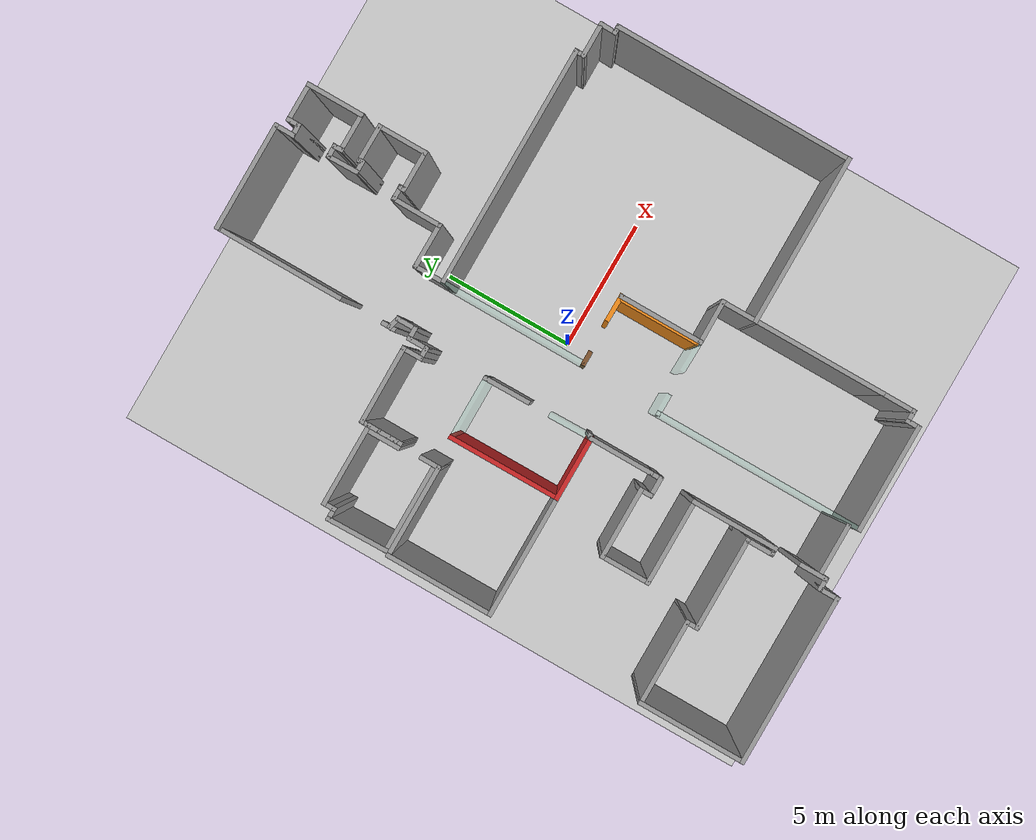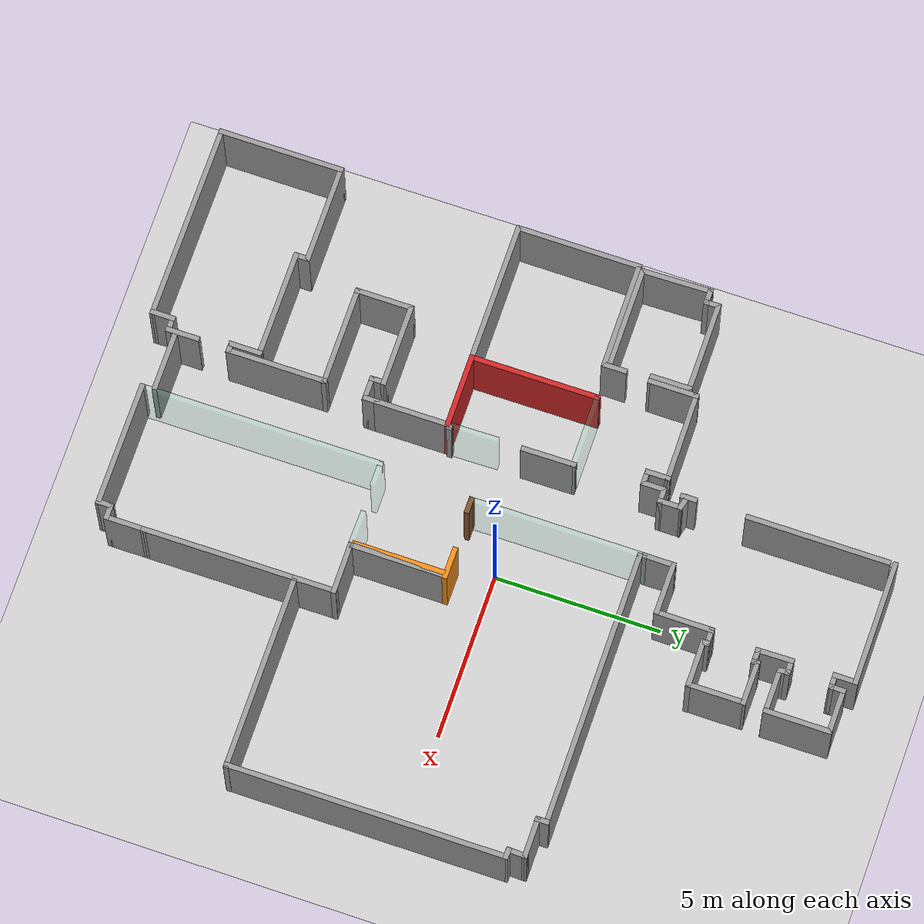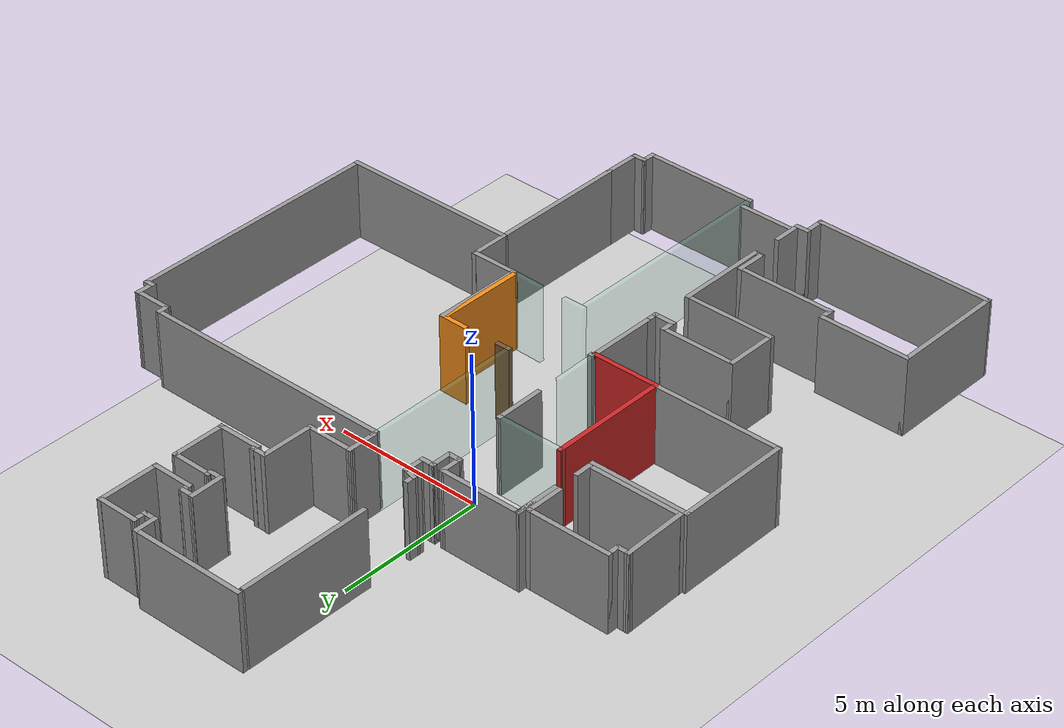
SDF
<sdf version="1.6">
 <world name="default">
  <model name="ground_plane">
   <static>1</static>
   <link name="link">
    <collision name="collision">
     <geometry><plane><normal>0 0 1</normal><size>100 100</size></plane></geometry>
     <surface><friction><ode><mu>100</mu><mu2>50</mu2></ode></friction></surface>
    </collision>
    <visual name="visual">
     <cast_shadows>0</cast_shadows>
     <geometry><plane><normal>0 0 1</normal><size>100 100</size></plane></geometry>
     <material>
      <script><uri>file://media/materials/scripts/gazebo.material</uri><name>Gazebo/Grey</name></script>
     </material>
    </visual>
   </link>
  </model>
  <model name="SS_office_try_3">
   <pose>0.153592 -0.122335 2.5 0 -0 0</pose>
   <link name="Wall_0">
    <collision name="Wall_0_Collision">
     <geometry><box><size>5.91251 0.15 2.5</size></box></geometry>
     <pose>0 0 1.25 0 -0 0</pose>
    </collision>
    <visual name="Wall_0_Visual">
     <pose>0 0 1.25 0 -0 0</pose>
     <geometry><box><size>5.91251 0.15 2.5</size></box></geometry>
     <material>
      <script><uri>file://media/materials/scripts/gazebo.material</uri><name>Gazebo/Grey</name></script>
      <ambient>1 1 1 1</ambient>
     </material>
     <meta><layer>0</layer></meta>
    </visual>
    <pose>-5.91425 -11.0474 0 0 -0 3.13893</pose>
   </link>
   <link name="Wall_1">
    <collision name="Wall_1_Collision">
     <geometry><box><size>3.75 0.15 2.5</size></box></geometry>
     <pose>0 0 1.25 0 -0 0</pose>
    </collision>
    <visual name="Wall_1_Visual">
     <pose>0 0 1.25 0 -0 0</pose>
     <geometry><box><size>3.75 0.15 2.5</size></box></geometry>
     <material>
      <script><uri>file://media/materials/scripts/gazebo.material</uri><name>Gazebo/Grey</name></script>
      <ambient>1 1 1 1</ambient>
     </material>
     <meta><layer>0</layer></meta>
    </visual>
    <pose>-8.79549 -9.23977 0 0 -0 1.5708</pose>
   </link>
   <link name="Wall_10">
    <collision name="Wall_10_Collision">
     <geometry><box><size>1.75 0.15 2.5</size></box></geometry>
     <pose>0 0 1.25 0 -0 0</pose>
    </collision>
    <visual name="Wall_10_Visual">
     <pose>0 0 1.25 0 -0 0</pose>
     <geometry><box><size>1.75 0.15 2.5</size></box></geometry>
     <material>
      <script><uri>file://media/materials/scripts/gazebo.material</uri><name>Gazebo/Grey</name></script>
      <ambient>1 1 1 1</ambient>
     </material>
     <meta><layer>0</layer></meta>
    </visual>
    <pose>-5.49549 -4.98977 0 0 -0 1.5708</pose>
   </link>
   <link name="Wall_100">
    <collision name="Wall_100_Collision">
     <geometry><box><size>0.379823 0.15 2.5</size></box></geometry>
     <pose>0 0 1.25 0 -0 0</pose>
    </collision>
    <visual name="Wall_100_Visual">
     <pose>0 0 1.25 0 -0 0</pose>
     <geometry><box><size>0.379823 0.15 2.5</size></box></geometry>
     <material>
      <script><uri>file://media/materials/scripts/gazebo.material</uri><name>Gazebo/Grey</name></script>
      <ambient>1 1 1 1</ambient>
     </material>
     <meta><layer>0</layer></meta>
    </visual>
    <pose>1.28072 9.07016 0 0 -0 1.63617</pose>
   </link>
   <link name="Wall_101">
    <collision name="Wall_101_Collision">
     <geometry><box><size>0.5 0.15 2.5</size></box></geometry>
     <pose>0 0 1.25 0 -0 0</pose>
    </collision>
    <visual name="Wall_101_Visual">
     <pose>0 0 1.25 0 -0 0</pose>
     <geometry><box><size>0.5 0.15 2.5</size></box></geometry>
     <material>
      <script><uri>file://media/materials/scripts/gazebo.material</uri><name>Gazebo/Grey</name></script>
      <ambient>1 1 1 1</ambient>
     </material>
     <meta><layer>0</layer></meta>
    </visual>
    <pose>1.10572 9.18501 0 0 -0 3.14159</pose>
   </link>
   <link name="Wall_102">
    <collision name="Wall_102_Collision">
     <geometry><box><size>1.12973 0.15 2.5</size></box></geometry>
     <pose>0 0 1.25 0 -0 0</pose>
    </collision>
    <visual name="Wall_102_Visual">
     <pose>0 0 1.25 0 -0 0</pose>
     <geometry><box><size>1.12973 0.15 2.5</size></box></geometry>
     <material>
      <script><uri>file://media/materials/scripts/gazebo.material</uri><name>Gazebo/Grey</name></script>
      <ambient>1 1 1 1</ambient>
     </material>
     <meta><layer>0</layer></meta>
    </visual>
    <pose>0.930715 8.69516 0 0 0 -1.55545</pose>
   </link>
   <link name="Wall_103">
    <collision name="Wall_103_Collision">
     <geometry><box><size>0.5 0.15 2.5</size></box></geometry>
     <pose>0 0 1.25 0 -0 0</pose>
    </collision>
    <visual name="Wall_103_Visual">
     <pose>0 0 1.25 0 -0 0</pose>
     <geometry><box><size>0.5 0.15 2.5</size></box></geometry>
     <material>
      <script><uri>file://media/materials/scripts/gazebo.material</uri><name>Gazebo/Grey</name></script>
      <ambient>1 1 1 1</ambient>
     </material>
     <meta><layer>0</layer></meta>
    </visual>
    <pose>1.11323 8.20531 0 0 -0 0</pose>
   </link>
   <link name="Wall_104">
    <collision name="Wall_104_Collision">
     <geometry><box><size>0.25 0.15 2.5</size></box></geometry>
     <pose>0 0 1.25 0 -0 0</pose>
    </collision>
    <visual name="Wall_104_Visual">
     <pose>0 0 1.25 0 -0 0</pose>
     <geometry><box><size>0.25 0.15 2.5</size></box></geometry>
     <material>
      <script><uri>file://media/materials/scripts/gazebo.material</uri><name>Gazebo/Grey</name></script>
      <ambient>1 1 1 1</ambient>
     </material>
     <meta><layer>0</layer></meta>
    </visual>
    <pose>1.28823 8.25531 0 0 -0 1.5708</pose>
   </link>
   <link name="Wall_105">
    <collision name="Wall_105_Collision">
     <geometry><box><size>1.3554 0.15 2.5</size></box></geometry>
     <pose>0 0 1.25 0 -0 0</pose>
    </collision>
    <visual name="Wall_105_Visual">
     <pose>0 0 1.25 0 -0 0</pose>
     <geometry><box><size>1.3554 0.15 2.5</size></box></geometry>
     <material>
      <script><uri>file://media/materials/scripts/gazebo.material</uri><name>Gazebo/Grey</name></script>
      <ambient>1 1 1 1</ambient>
     </material>
     <meta><layer>0</layer></meta>
    </visual>
    <pose>1.89089 8.29779 0 0 0 -0.012475</pose>
   </link>
   <link name="Wall_106">
    <collision name="Wall_106_Collision">
     <geometry><box><size>1.75 0.15 2.5</size></box></geometry>
     <pose>0 0 1.25 0 -0 0</pose>
    </collision>
    <visual name="Wall_106_Visual">
     <pose>0 0 1.25 0 -0 0</pose>
     <geometry><box><size>1.75 0.15 2.5</size></box></geometry>
     <material>
      <script><uri>file://media/materials/scripts/gazebo.material</uri><name>Gazebo/Grey</name></script>
      <ambient>1 1 1 1</ambient>
     </material>
     <meta><layer>0</layer></meta>
    </visual>
    <pose>2.49354 7.49027 0 0 0 -1.5708</pose>
   </link>
   <link name="Wall_107">
    <collision name="Wall_107_Collision">
     <geometry><box><size>1.45874 0.15 2.5</size></box></geometry>
     <pose>0 0 1.25 0 -0 0</pose>
    </collision>
    <visual name="Wall_107_Visual">
     <pose>0 0 1.25 0 -0 0</pose>
     <geometry><box><size>1.45874 0.15 2.5</size></box></geometry>
     <material>
      <script><uri>file://media/materials/scripts/gazebo.material</uri><name>Gazebo/Grey</name></script>
      <ambient>1 1 1 1</ambient>
     </material>
     <meta><layer>0</layer></meta>
    </visual>
    <pose>1.84486 6.69027 0 0 -0 3.14159</pose>
   </link>
   <link name="Wall_108">
    <collision name="Wall_108_Collision">
     <geometry><box><size>0.266919 0.15 2.5</size></box></geometry>
     <pose>0 0 1.25 0 -0 0</pose>
    </collision>
    <visual name="Wall_108_Visual">
     <pose>0 0 1.25 0 -0 0</pose>
     <geometry><box><size>0.266919 0.15 2.5</size></box></geometry>
     <material>
      <script><uri>file://media/materials/scripts/gazebo.material</uri><name>Gazebo/Grey</name></script>
      <ambient>1 1 1 1</ambient>
     </material>
     <meta><layer>0</layer></meta>
    </visual>
    <pose>1.19801 6.75625 0 0 -0 1.5708</pose>
   </link>
   <link name="Wall_109">
    <collision name="Wall_109_Collision">
     <geometry><box><size>0.552631 0.15 2.5</size></box></geometry>
     <pose>0 0 1.25 0 -0 0</pose>
    </collision>
    <visual name="Wall_109_Visual">
     <pose>0 0 1.25 0 -0 0</pose>
     <geometry><box><size>0.552631 0.15 2.5</size></box></geometry>
     <material>
      <script><uri>file://media/materials/scripts/gazebo.material</uri><name>Gazebo/Grey</name></script>
      <ambient>1 1 1 1</ambient>
     </material>
     <meta><layer>0</layer></meta>
    </visual>
    <pose>1.00421 6.80719 0 0 -0 3.14159</pose>
   </link>
   <link name="Wall_11">
    <collision name="Wall_11_Collision">
     <geometry><box><size>2.5 0.15 2.5</size></box></geometry>
     <pose>0 0 1.25 0 -0 0</pose>
    </collision>
    <visual name="Wall_11_Visual">
     <pose>0 0 1.25 0 -0 0</pose>
     <geometry><box><size>2.5 0.15 2.5</size></box></geometry>
     <material>
      <script><uri>file://media/materials/scripts/gazebo.material</uri><name>Gazebo/Grey</name></script>
      <ambient>1 1 1 1</ambient>
     </material>
     <meta><layer>0</layer></meta>
    </visual>
    <pose>-4.32049 -4.18977 0 0 -0 0</pose>
   </link>
   <link name="Wall_110">
    <collision name="Wall_110_Collision">
     <geometry><box><size>1.75942 0.15 2.5</size></box></geometry>
     <pose>0 0 1.25 0 -0 0</pose>
    </collision>
    <visual name="Wall_110_Visual">
     <pose>0 0 1.25 0 -0 0</pose>
     <geometry><box><size>1.75942 0.15 2.5</size></box></geometry>
     <material>
      <script><uri>file://media/materials/scripts/gazebo.material</uri><name>Gazebo/Grey</name></script>
      <ambient>1 1 1 1</ambient>
     </material>
     <meta><layer>0</layer></meta>
    </visual>
    <pose>0.791618 6.01001 0 0 0 -1.57547</pose>
   </link>
   <link name="Wall_111">
    <collision name="Wall_111_Collision">
     <geometry><box><size>1.59211 0.15 2.5</size></box></geometry>
     <pose>0 0 1.25 0 -0 0</pose>
    </collision>
    <visual name="Wall_111_Visual">
     <pose>0 0 1.25 0 -0 0</pose>
     <geometry><box><size>1.59211 0.15 2.5</size></box></geometry>
     <material>
      <script><uri>file://media/materials/scripts/gazebo.material</uri><name>Gazebo/Grey</name></script>
      <ambient>1 1 1 1</ambient>
     </material>
     <meta><layer>0</layer></meta>
    </visual>
    <pose>0.059287 5.20155 0 0 -0 3.13638</pose>
   </link>
   <link name="Wall_113">
    <collision name="Wall_113_Collision">
     <geometry><box><size>1 0.15 2.5</size></box></geometry>
     <pose>0 0 1.25 0 -0 0</pose>
    </collision>
    <visual name="Wall_113_Visual">
     <pose>0 0 1.25 0 -0 0</pose>
     <geometry><box><size>1 0.15 2.5</size></box></geometry>
     <material>
      <script><uri>file://media/materials/scripts/gazebo.material</uri><name>Gazebo/Grey</name></script>
      <ambient>1 1 1 1</ambient>
     </material>
     <meta><layer>0</layer></meta>
    </visual>
    <pose>-0.661766 4.78031 0 0 0 -1.5708</pose>
   </link>
   <link name="Wall_115">
    <collision name="Wall_115_Collision">
     <geometry><box><size>5.25 0.15 2.5</size></box></geometry>
     <pose>0 0 1.25 0 -0 0</pose>
    </collision>
    <visual name="Wall_115_Visual">
     <pose>0 0 1.25 0 -0 0</pose>
     <geometry><box><size>5.25 0.15 2.5</size></box></geometry>
     <material>
      <script><uri>file://media/materials/scripts/gazebo.material</uri><name>Gazebo/Grey</name></script>
      <ambient>0.435 0.796 0.675 1</ambient>
      <diffuse>0.7 0.7 0.7 1</diffuse>
      <specular>0.01 0.01 0.01 1</specular>
      <emissive>0 0 0 1</emissive>
     </material>
     <meta><layer>0</layer></meta>
     <transparency>0.8</transparency>
    </visual>
    <pose>-0.661766 1.80531 0 0 0 -1.5708</pose>
   </link>
   <link name="Wall_116">
    <collision name="Wall_116_Collision">
     <geometry><box><size>0.5 0.15 2.5</size></box></geometry>
     <pose>0 0 1.25 0 -0 0</pose>
    </collision>
    <visual name="Wall_116_Visual">
     <pose>0 0 1.25 0 -0 0</pose>
     <geometry><box><size>0.5 0.15 2.5</size></box></geometry>
     <material>
      <script><uri>file://media/materials/scripts/gazebo.material</uri><name>Gazebo/Brown</name></script>
      <ambient>1 1 1 1</ambient>
     </material>
     <meta><layer>0</layer></meta>
    </visual>
    <pose>-0.486766 -0.744691 0 0 -0 0</pose>
   </link>
   <link name="Wall_118">
    <collision name="Wall_118_Collision">
     <geometry><box><size>0.961189 0.15 2.5</size></box></geometry>
     <pose>0 0 1.25 0 -0 0</pose>
    </collision>
    <visual name="Wall_118_Visual">
     <pose>0 0 1.25 0 -0 0</pose>
     <geometry><box><size>0.961189 0.15 2.5</size></box></geometry>
     <material>
      <script><uri>file://media/materials/scripts/gazebo.material</uri><name>Gazebo/Orange</name></script>
      <ambient>1 1 1 1</ambient>
     </material>
     <meta><layer>0</layer></meta>
    </visual>
    <pose>1.28357 -0.707118 0 0 0 -0.008354</pose>
   </link>
   <link name="Wall_119">
    <collision name="Wall_119_Collision">
     <geometry><box><size>2.92618 0.15 2.5</size></box></geometry>
     <pose>0 0 1.25 0 -0 0</pose>
    </collision>
    <visual name="Wall_119_Visual">
     <pose>0 0 1.25 0 -0 0</pose>
     <geometry><box><size>2.92618 0.15 2.5</size></box></geometry>
     <material>
      <script><uri>file://media/materials/scripts/gazebo.material</uri><name>Gazebo/Grey</name></script>
      <ambient>1 1 1 1</ambient>
     </material>
     <meta><layer>0</layer></meta>
    </visual>
    <pose>1.68237 -2.11215 0 0 0 -1.5708</pose>
   </link>
   <link name="Wall_12">
    <collision name="Wall_12_Collision">
     <geometry><box><size>0.5 0.15 2.5</size></box></geometry>
     <pose>0 0 1.25 0 -0 0</pose>
    </collision>
    <visual name="Wall_12_Visual">
     <pose>0 0 1.25 0 -0 0</pose>
     <geometry><box><size>0.5 0.15 2.5</size></box></geometry>
     <material>
      <script><uri>file://media/materials/scripts/gazebo.material</uri><name>Gazebo/Grey</name></script>
      <ambient>1 1 1 1</ambient>
     </material>
     <meta><layer>0</layer></meta>
    </visual>
    <pose>-3.14549 -4.36477 0 0 0 -1.5708</pose>
   </link>
   <link name="Wall_120">
    <collision name="Wall_120_Collision">
     <geometry><box><size>1.55423 0.15 2.5</size></box></geometry>
     <pose>0 0 1.25 0 -0 0</pose>
    </collision>
    <visual name="Wall_120_Visual">
     <pose>0 0 1.25 0 -0 0</pose>
     <geometry><box><size>1.55423 0.15 2.5</size></box></geometry>
     <material>
      <script><uri>file://media/materials/scripts/gazebo.material</uri><name>Gazebo/Grey</name></script>
      <ambient>1 1 1 1</ambient>
     </material>
     <meta><layer>0</layer></meta>
    </visual>
    <pose>2.39125 -3.50363 0 0 -0 0.004826</pose>
   </link>
   <link name="Wall_121">
    <collision name="Wall_121_Collision">
     <geometry><box><size>1.31028 0.15 2.5</size></box></geometry>
     <pose>0 0 1.25 0 -0 0</pose>
    </collision>
    <visual name="Wall_121_Visual">
     <pose>0 0 1.25 0 -0 0</pose>
     <geometry><box><size>1.31028 0.15 2.5</size></box></geometry>
     <material>
      <script><uri>file://media/materials/scripts/gazebo.material</uri><name>Gazebo/Grey</name></script>
      <ambient>1 1 1 1</ambient>
     </material>
     <meta><layer>0</layer></meta>
    </visual>
    <pose>3.08997 -4.0736 0 0 0 -1.56496</pose>
   </link>
   <link name="Wall_122">
    <collision name="Wall_122_Collision">
     <geometry><box><size>5.85233 0.15 2.5</size></box></geometry>
     <pose>0 0 1.25 0 -0 0</pose>
    </collision>
    <visual name="Wall_122_Visual">
     <pose>0 0 1.25 0 -0 0</pose>
     <geometry><box><size>5.85233 0.15 2.5</size></box></geometry>
     <material>
      <script><uri>file://media/materials/scripts/gazebo.material</uri><name>Gazebo/Grey</name></script>
      <ambient>1 1 1 1</ambient>
     </material>
     <meta><layer>0</layer></meta>
    </visual>
    <pose>5.94452 -4.65373 0 0 -0 0</pose>
   </link>
   <link name="Wall_123">
    <collision name="Wall_123_Collision">
     <geometry><box><size>8.28775 0.15 2.5</size></box></geometry>
     <pose>0 0 1.25 0 -0 0</pose>
    </collision>
    <visual name="Wall_123_Visual">
     <pose>0 0 1.25 0 -0 0</pose>
     <geometry><box><size>8.28775 0.15 2.5</size></box></geometry>
     <material>
      <script><uri>file://media/materials/scripts/gazebo.material</uri><name>Gazebo/Grey</name></script>
      <ambient>1 1 1 1</ambient>
     </material>
     <meta><layer>0</layer></meta>
    </visual>
    <pose>8.78622 -0.584854 0 0 -0 1.57126</pose>
   </link>
   <link name="Wall_124">
    <collision name="Wall_124_Collision">
     <geometry><box><size>0.352219 0.15 2.5</size></box></geometry>
     <pose>0 0 1.25 0 -0 0</pose>
    </collision>
    <visual name="Wall_124_Visual">
     <pose>0 0 1.25 0 -0 0</pose>
     <geometry><box><size>0.352219 0.15 2.5</size></box></geometry>
     <material>
      <script><uri>file://media/materials/scripts/gazebo.material</uri><name>Gazebo/Grey</name></script>
      <ambient>1 1 1 1</ambient>
     </material>
     <meta><layer>0</layer></meta>
    </visual>
    <pose>8.68323 3.48971 0 0 -0 3.12285</pose>
   </link>
   <link name="Wall_125">
    <collision name="Wall_125_Collision">
     <geometry><box><size>0.636677 0.15 2.5</size></box></geometry>
     <pose>0 0 1.25 0 -0 0</pose>
    </collision>
    <visual name="Wall_125_Visual">
     <pose>0 0 1.25 0 -0 0</pose>
     <geometry><box><size>0.636677 0.15 2.5</size></box></geometry>
     <material>
      <script><uri>file://media/materials/scripts/gazebo.material</uri><name>Gazebo/Grey</name></script>
      <ambient>1 1 1 1</ambient>
     </material>
     <meta><layer>0</layer></meta>
    </visual>
    <pose>8.58585 3.73103 0 0 -0 1.53995</pose>
   </link>
   <link name="Wall_126">
    <collision name="Wall_126_Collision">
     <geometry><box><size>1.25 0.15 2.5</size></box></geometry>
     <pose>0 0 1.25 0 -0 0</pose>
    </collision>
    <visual name="Wall_126_Visual">
     <pose>0 0 1.25 0 -0 0</pose>
     <geometry><box><size>1.25 0.15 2.5</size></box></geometry>
     <material>
      <script><uri>file://media/materials/scripts/gazebo.material</uri><name>Gazebo/Grey</name></script>
      <ambient>1 1 1 1</ambient>
     </material>
     <meta><layer>0</layer></meta>
    </visual>
    <pose>8.04336 3.97426 0 0 -0 3.14159</pose>
   </link>
   <link name="Wall_127">
    <collision name="Wall_127_Collision">
     <geometry><box><size>0.411283 0.15 2.5</size></box></geometry>
     <pose>0 0 1.25 0 -0 0</pose>
    </collision>
    <visual name="Wall_127_Visual">
     <pose>0 0 1.25 0 -0 0</pose>
     <geometry><box><size>0.411283 0.15 2.5</size></box></geometry>
     <material>
      <script><uri>file://media/materials/scripts/gazebo.material</uri><name>Gazebo/Grey</name></script>
      <ambient>1 1 1 1</ambient>
     </material>
     <meta><layer>0</layer></meta>
    </visual>
    <pose>7.49234 4.1011 0 0 -0 1.57861</pose>
   </link>
   <link name="Wall_128">
    <collision name="Wall_128_Collision">
     <geometry><box><size>8.25 0.15 2.5</size></box></geometry>
     <pose>0 0 1.25 0 -0 0</pose>
    </collision>
    <visual name="Wall_128_Visual">
     <pose>0 0 1.25 0 -0 0</pose>
     <geometry><box><size>8.25 0.15 2.5</size></box></geometry>
     <material>
      <script><uri>file://media/materials/scripts/gazebo.material</uri><name>Gazebo/Grey</name></script>
      <ambient>1 1 1 1</ambient>
     </material>
     <meta><layer>0</layer></meta>
    </visual>
    <pose>3.43753 4.23174 0 0 -0 3.14159</pose>
   </link>
   <link name="Wall_13">
    <collision name="Wall_13_Collision">
     <geometry><box><size>0.75 0.15 2.5</size></box></geometry>
     <pose>0 0 1.25 0 -0 0</pose>
    </collision>
    <visual name="Wall_13_Visual">
     <pose>0 0 1.25 0 -0 0</pose>
     <geometry><box><size>0.75 0.15 2.5</size></box></geometry>
     <material>
      <script><uri>file://media/materials/scripts/gazebo.material</uri><name>Gazebo/Grey</name></script>
      <ambient>1 1 1 1</ambient>
     </material>
     <meta><layer>0</layer></meta>
    </visual>
    <pose>-2.84549 -4.53977 0 0 -0 0</pose>
   </link>
   <link name="Wall_134">
    <collision name="Wall_134_Collision">
     <geometry><box><size>1.13806 0.15 2.5</size></box></geometry>
     <pose>0 0 1.25 0 -0 0</pose>
    </collision>
    <visual name="Wall_134_Visual">
     <pose>0 0 1.25 0 -0 0</pose>
     <geometry><box><size>1.13806 0.15 2.5</size></box></geometry>
     <material>
      <script><uri>file://media/materials/scripts/gazebo.material</uri><name>Gazebo/Grey</name></script>
      <ambient>0.435 0.796 0.675 1</ambient>
      <diffuse>0.7 0.7 0.7 1</diffuse>
      <specular>0.01 0.01 0.01 1</specular>
      <emissive>0 0 0 1</emissive>
     </material>
     <meta><layer>0</layer></meta>
     <transparency>0.8</transparency>
    </visual>
    <pose>1.19527 -3.49491 0 0 0 -0.024517</pose>
   </link>
   <link name="Wall_136">
    <collision name="Wall_136_Collision">
     <geometry><box><size>2.75 0.15 2.5</size></box></geometry>
     <pose>0 0 1.25 0 -0 0</pose>
    </collision>
    <visual name="Wall_136_Visual">
     <pose>0 0 1.25 0 -0 0</pose>
     <geometry><box><size>2.75 0.15 2.5</size></box></geometry>
     <material>
      <script><uri>file://media/materials/scripts/gazebo.material</uri><name>Gazebo/Orange</name></script>
      <ambient>1 1 1 1</ambient>
     </material>
     <meta><layer>0</layer></meta>
    </visual>
    <pose>1.60652 -2.11221 0 0 0 -1.5708</pose>
   </link>
   <link name="Wall_138">
    <collision name="Wall_138_Collision">
     <geometry><box><size>0.75 0.15 2.5</size></box></geometry>
     <pose>0 0 1.25 0 -0 0</pose>
    </collision>
    <visual name="Wall_138_Visual">
     <pose>0 0 1.25 0 -0 0</pose>
     <geometry><box><size>0.75 0.15 2.5</size></box></geometry>
     <material>
      <script><uri>file://media/materials/scripts/gazebo.material</uri><name>Gazebo/Grey</name></script>
      <ambient>0.435 0.796 0.675 1</ambient>
      <diffuse>0.7 0.7 0.7 1</diffuse>
      <specular>0.01 0.01 0.01 1</specular>
      <emissive>0 0 0 1</emissive>
     </material>
     <meta><layer>0</layer></meta>
     <transparency>0.8</transparency>
    </visual>
    <pose>-0.548157 -3.49201 0 0 -0 3.14159</pose>
   </link>
   <link name="Wall_139">
    <collision name="Wall_139_Collision">
     <geometry><box><size>7.25 0.15 2.5</size></box></geometry>
     <pose>0 0 1.25 0 -0 0</pose>
    </collision>
    <visual name="Wall_139_Visual">
     <pose>0 0 1.25 0 -0 0</pose>
     <geometry><box><size>7.25 0.15 2.5</size></box></geometry>
     <material>
      <script><uri>file://media/materials/scripts/gazebo.material</uri><name>Gazebo/Grey</name></script>
      <ambient>0.435 0.796 0.675 1</ambient>
      <diffuse>0.7 0.7 0.7 1</diffuse>
      <specular>0.01 0.01 0.01 1</specular>
      <emissive>0 0 0 1</emissive>
     </material>
     <meta><layer>0</layer></meta>
     <transparency>0.8</transparency>
    </visual>
    <pose>-0.848157 -7.04201 0 0 0 -1.5708</pose>
   </link>
   <link name="Wall_141">
    <collision name="Wall_141_Collision">
     <geometry><box><size>3.75 0.15 2.5</size></box></geometry>
     <pose>0 0 1.25 0 -0 0</pose>
    </collision>
    <visual name="Wall_141_Visual">
     <pose>0 0 1.25 0 -0 0</pose>
     <geometry><box><size>3.75 0.15 2.5</size></box></geometry>
     <material>
      <script><uri>file://media/materials/scripts/gazebo.material</uri><name>Gazebo/Grey</name></script>
      <ambient>1 1 1 1</ambient>
     </material>
     <meta><layer>0</layer></meta>
    </visual>
    <pose>0.951844 -10.592 0 0 -0 0</pose>
   </link>
   <link name="Wall_142">
    <collision name="Wall_142_Collision">
     <geometry><box><size>0.520329 0.15 2.5</size></box></geometry>
     <pose>0 0 1.25 0 -0 0</pose>
    </collision>
    <visual name="Wall_142_Visual">
     <pose>0 0 1.25 0 -0 0</pose>
     <geometry><box><size>0.520329 0.15 2.5</size></box></geometry>
     <material>
      <script><uri>file://media/materials/scripts/gazebo.material</uri><name>Gazebo/Grey</name></script>
      <ambient>1 1 1 1</ambient>
     </material>
     <meta><layer>0</layer></meta>
    </visual>
    <pose>2.75354 -10.4068 0 0 -0 1.56165</pose>
   </link>
   <link name="Wall_145">
    <collision name="Wall_145_Collision">
     <geometry><box><size>0.5 0.15 2.5</size></box></geometry>
     <pose>0 0 1.25 0 -0 0</pose>
    </collision>
    <visual name="Wall_145_Visual">
     <pose>0 0 1.25 0 -0 0</pose>
     <geometry><box><size>0.5 0.15 2.5</size></box></geometry>
     <material>
      <script><uri>file://media/materials/scripts/gazebo.material</uri><name>Gazebo/Grey</name></script>
      <ambient>1 1 1 1</ambient>
     </material>
     <meta><layer>0</layer></meta>
    </visual>
    <pose>2.93023 -10.2217 0 0 -0 0</pose>
   </link>
   <link name="Wall_146">
    <collision name="Wall_146_Collision">
     <geometry><box><size>1.25 0.15 2.5</size></box></geometry>
     <pose>0 0 1.25 0 -0 0</pose>
    </collision>
    <visual name="Wall_146_Visual">
     <pose>0 0 1.25 0 -0 0</pose>
     <geometry><box><size>1.25 0.15 2.5</size></box></geometry>
     <material>
      <script><uri>file://media/materials/scripts/gazebo.material</uri><name>Gazebo/Grey</name></script>
      <ambient>1 1 1 1</ambient>
     </material>
     <meta><layer>0</layer></meta>
    </visual>
    <pose>3.10523 -9.67168 0 0 -0 1.5708</pose>
   </link>
   <link name="Wall_147">
    <collision name="Wall_147_Collision">
     <geometry><box><size>4.61797 0.15 2.5</size></box></geometry>
     <pose>0 0 1.25 0 -0 0</pose>
    </collision>
    <visual name="Wall_147_Visual">
     <pose>0 0 1.25 0 -0 0</pose>
     <geometry><box><size>4.61797 0.15 2.5</size></box></geometry>
     <material>
      <script><uri>file://media/materials/scripts/gazebo.material</uri><name>Gazebo/Grey</name></script>
      <ambient>1 1 1 1</ambient>
     </material>
     <meta><layer>0</layer></meta>
    </visual>
    <pose>3.0993 -6.88771 0 0 -0 1.57345</pose>
   </link>
   <link name="Wall_149">
    <collision name="Wall_149_Collision">
     <geometry><box><size>1.75 0.15 2.5</size></box></geometry>
     <pose>0 0 1.25 0 -0 0</pose>
    </collision>
    <visual name="Wall_149_Visual">
     <pose>0 0 1.25 0 -0 0</pose>
     <geometry><box><size>1.75 0.15 2.5</size></box></geometry>
     <material>
      <script><uri>file://media/materials/scripts/gazebo.material</uri><name>Gazebo/Grey</name></script>
      <ambient>1 1 1 1</ambient>
     </material>
     <meta><layer>0</layer></meta>
    </visual>
    <pose>-1.74079 -10.2333 0 0 -0 3.14159</pose>
   </link>
   <link name="Wall_151">
    <collision name="Wall_151_Collision">
     <geometry><box><size>1 0.15 2.5</size></box></geometry>
     <pose>0 0 1.25 0 -0 0</pose>
    </collision>
    <visual name="Wall_151_Visual">
     <pose>0 0 1.25 0 -0 0</pose>
     <geometry><box><size>1 0.15 2.5</size></box></geometry>
     <material>
      <script><uri>file://media/materials/scripts/gazebo.material</uri><name>Gazebo/Grey</name></script>
      <ambient>1 1 1 1</ambient>
     </material>
     <meta><layer>0</layer></meta>
    </visual>
    <pose>-2.68301 -10.0301 0 0 0 -1.5708</pose>
   </link>
   <link name="Wall_152">
    <collision name="Wall_152_Collision">
     <geometry><box><size>0.5 0.15 2.5</size></box></geometry>
     <pose>0 0 1.25 0 -0 0</pose>
    </collision>
    <visual name="Wall_152_Visual">
     <pose>0 0 1.25 0 -0 0</pose>
     <geometry><box><size>0.5 0.15 2.5</size></box></geometry>
     <material>
      <script><uri>file://media/materials/scripts/gazebo.material</uri><name>Gazebo/Grey</name></script>
      <ambient>1 1 1 1</ambient>
     </material>
     <meta><layer>0</layer></meta>
    </visual>
    <pose>-2.85801 -10.4551 0 0 -0 3.14159</pose>
   </link>
   <link name="Wall_153">
    <collision name="Wall_153_Collision">
     <geometry><box><size>0.75 0.15 2.5</size></box></geometry>
     <pose>0 0 1.25 0 -0 0</pose>
    </collision>
    <visual name="Wall_153_Visual">
     <pose>0 0 1.25 0 -0 0</pose>
     <geometry><box><size>0.75 0.15 2.5</size></box></geometry>
     <material>
      <script><uri>file://media/materials/scripts/gazebo.material</uri><name>Gazebo/Grey</name></script>
      <ambient>1 1 1 1</ambient>
     </material>
     <meta><layer>0</layer></meta>
    </visual>
    <pose>-3.03301 -10.7551 0 0 0 -1.5708</pose>
   </link>
   <link name="Wall_155">
    <collision name="Wall_155_Collision">
     <geometry><box><size>1.62091 0.15 2.5</size></box></geometry>
     <pose>0 0 1.25 0 -0 0</pose>
    </collision>
    <visual name="Wall_155_Visual">
     <pose>0 0 1.25 0 -0 0</pose>
     <geometry><box><size>1.62091 0.15 2.5</size></box></geometry>
     <material>
      <script><uri>file://media/materials/scripts/gazebo.material</uri><name>Gazebo/Grey</name></script>
      <ambient>1 1 1 1</ambient>
     </material>
     <meta><layer>0</layer></meta>
    </visual>
    <pose>-2.55275 0.898318 0 0 -0 1.57861</pose>
   </link>
   <link name="Wall_2">
    <collision name="Wall_2_Collision">
     <geometry><box><size>3 0.15 2.5</size></box></geometry>
     <pose>0 0 1.25 0 -0 0</pose>
    </collision>
    <visual name="Wall_2_Visual">
     <pose>0 0 1.25 0 -0 0</pose>
     <geometry><box><size>3 0.15 2.5</size></box></geometry>
     <material>
      <script><uri>file://media/materials/scripts/gazebo.material</uri><name>Gazebo/Grey</name></script>
      <ambient>1 1 1 1</ambient>
     </material>
     <meta><layer>0</layer></meta>
    </visual>
    <pose>-7.37049 -7.43977 0 0 -0 0</pose>
   </link>
   <link name="Wall_28">
    <collision name="Wall_28_Collision">
     <geometry><box><size>0.15 0.15 2.5</size></box></geometry>
     <pose>0 0 1.25 0 -0 0</pose>
    </collision>
    <visual name="Wall_28_Visual">
     <pose>0 0 1.25 0 -0 0</pose>
     <geometry><box><size>0.15 0.15 2.5</size></box></geometry>
     <material>
      <script><uri>file://media/materials/scripts/gazebo.material</uri><name>Gazebo/Grey</name></script>
      <ambient>1 1 1 1</ambient>
     </material>
     <meta><layer>0</layer></meta>
    </visual>
    <pose>-2.48781 -2.00969 0 0 -0 0</pose>
   </link>
   <link name="Wall_3">
    <collision name="Wall_3_Collision">
     <geometry><box><size>0.5 0.15 2.5</size></box></geometry>
     <pose>0 0 1.25 0 -0 0</pose>
    </collision>
    <visual name="Wall_3_Visual">
     <pose>0 0 1.25 0 -0 0</pose>
     <geometry><box><size>0.5 0.15 2.5</size></box></geometry>
     <material>
      <script><uri>file://media/materials/scripts/gazebo.material</uri><name>Gazebo/Grey</name></script>
      <ambient>1 1 1 1</ambient>
     </material>
     <meta><layer>0</layer></meta>
    </visual>
    <pose>-5.94549 -7.61477 0 0 0 -1.5708</pose>
   </link>
   <link name="Wall_39">
    <collision name="Wall_39_Collision">
     <geometry><box><size>0.5 0.15 2.5</size></box></geometry>
     <pose>0 0 1.25 0 -0 0</pose>
    </collision>
    <visual name="Wall_39_Visual">
     <pose>0 0 1.25 0 -0 0</pose>
     <geometry><box><size>0.5 0.15 2.5</size></box></geometry>
     <material>
      <script><uri>file://media/materials/scripts/gazebo.material</uri><name>Gazebo/Grey</name></script>
      <ambient>1 1 1 1</ambient>
     </material>
     <meta><layer>0</layer></meta>
    </visual>
    <pose>-2.54549 -4.36477 0 0 -0 1.5708</pose>
   </link>
   <link name="Wall_4">
    <collision name="Wall_4_Collision">
     <geometry><box><size>3.25 0.15 2.5</size></box></geometry>
     <pose>0 0 1.25 0 -0 0</pose>
    </collision>
    <visual name="Wall_4_Visual">
     <pose>0 0 1.25 0 -0 0</pose>
     <geometry><box><size>3.25 0.15 2.5</size></box></geometry>
     <material>
      <script><uri>file://media/materials/scripts/gazebo.material</uri><name>Gazebo/Grey</name></script>
      <ambient>1 1 1 1</ambient>
     </material>
     <meta><layer>0</layer></meta>
    </visual>
    <pose>-4.39549 -7.78977 0 0 -0 0</pose>
   </link>
   <link name="Wall_40">
    <collision name="Wall_40_Collision">
     <geometry><box><size>2.25 0.15 2.5</size></box></geometry>
     <pose>0 0 1.25 0 -0 0</pose>
    </collision>
    <visual name="Wall_40_Visual">
     <pose>0 0 1.25 0 -0 0</pose>
     <geometry><box><size>2.25 0.15 2.5</size></box></geometry>
     <material>
      <script><uri>file://media/materials/scripts/gazebo.material</uri><name>Gazebo/Grey</name></script>
      <ambient>1 1 1 1</ambient>
     </material>
     <meta><layer>0</layer></meta>
    </visual>
    <pose>-2.54549 -3.13977 0 0 -0 1.5708</pose>
   </link>
   <link name="Wall_42">
    <collision name="Wall_42_Collision">
     <geometry><box><size>1.56365 0.15 2.5</size></box></geometry>
     <pose>0 0 1.25 0 -0 0</pose>
    </collision>
    <visual name="Wall_42_Visual">
     <pose>0 0 1.25 0 -0 0</pose>
     <geometry><box><size>1.56365 0.15 2.5</size></box></geometry>
     <material>
      <script><uri>file://media/materials/scripts/gazebo.material</uri><name>Gazebo/Grey</name></script>
      <ambient>0.435 0.796 0.675 1</ambient>
      <diffuse>0.7 0.7 0.7 1</diffuse>
      <specular>0.01 0.01 0.01 1</specular>
      <emissive>0 0 0 1</emissive>
     </material>
     <meta><layer>0</layer></meta>
     <transparency>0.8</transparency>
    </visual>
    <pose>-2.55627 -1.38303 0 0 0 -1.55555</pose>
   </link>
   <link name="Wall_43">
    <collision name="Wall_43_Collision">
     <geometry><box><size>2.25 0.15 2.5</size></box></geometry>
     <pose>0 0 1.25 0 -0 0</pose>
    </collision>
    <visual name="Wall_43_Visual">
     <pose>0 0 1.25 0 -0 0</pose>
     <geometry><box><size>2.25 0.15 2.5</size></box></geometry>
     <material>
      <script><uri>file://media/materials/scripts/gazebo.material</uri><name>Gazebo/Red</name></script>
      <ambient>1 1 1 1</ambient>
     </material>
     <meta><layer>0</layer></meta>
    </visual>
    <pose>-3.59549 -2.08977 0 0 -0 3.14159</pose>
   </link>
   <link name="Wall_45">
    <collision name="Wall_45_Collision">
     <geometry><box><size>3.88655 0.15 2.5</size></box></geometry>
     <pose>0 0 1.25 0 -0 0</pose>
    </collision>
    <visual name="Wall_45_Visual">
     <pose>0 0 1.25 0 -0 0</pose>
     <geometry><box><size>3.88655 0.15 2.5</size></box></geometry>
     <material>
      <script><uri>file://media/materials/scripts/gazebo.material</uri><name>Gazebo/Red</name></script>
      <ambient>1 1 1 1</ambient>
     </material>
     <meta><layer>0</layer></meta>
    </visual>
    <pose>-4.65199 -0.221511 0 0 -0 1.57428</pose>
   </link>
   <link name="Wall_47">
    <collision name="Wall_47_Collision">
     <geometry><box><size>2.25 0.15 2.5</size></box></geometry>
     <pose>0 0 1.25 0 -0 0</pose>
    </collision>
    <visual name="Wall_47_Visual">
     <pose>0 0 1.25 0 -0 0</pose>
     <geometry><box><size>2.25 0.15 2.5</size></box></geometry>
     <material>
      <script><uri>file://media/materials/scripts/gazebo.material</uri><name>Gazebo/Grey</name></script>
      <ambient>0.435 0.796 0.675 1</ambient>
      <diffuse>0.7 0.7 0.7 1</diffuse>
      <specular>0.01 0.01 0.01 1</specular>
      <emissive>0 0 0 1</emissive>
     </material>
     <meta><layer>0</layer></meta>
     <transparency>0.8</transparency>
    </visual>
    <pose>-3.6085 1.63375 0 0 -0 0</pose>
   </link>
   <link name="Wall_49">
    <collision name="Wall_49_Collision">
     <geometry><box><size>4.25 0.15 2.5</size></box></geometry>
     <pose>0 0 1.25 0 -0 0</pose>
    </collision>
    <visual name="Wall_49_Visual">
     <pose>0 0 1.25 0 -0 0</pose>
     <geometry><box><size>4.25 0.15 2.5</size></box></geometry>
     <material>
      <script><uri>file://media/materials/scripts/gazebo.material</uri><name>Gazebo/Grey</name></script>
      <ambient>1 1 1 1</ambient>
     </material>
     <meta><layer>0</layer></meta>
    </visual>
    <pose>-6.69549 -2.08977 0 0 -0 3.14159</pose>
   </link>
   <link name="Wall_5">
    <collision name="Wall_5_Collision">
     <geometry><box><size>1 0.15 2.5</size></box></geometry>
     <pose>0 0 1.25 0 -0 0</pose>
    </collision>
    <visual name="Wall_5_Visual">
     <pose>0 0 1.25 0 -0 0</pose>
     <geometry><box><size>1 0.15 2.5</size></box></geometry>
     <material>
      <script><uri>file://media/materials/scripts/gazebo.material</uri><name>Gazebo/Grey</name></script>
      <ambient>1 1 1 1</ambient>
     </material>
     <meta><layer>0</layer></meta>
    </visual>
    <pose>-2.84549 -8.21477 0 0 0 -1.5708</pose>
   </link>
   <link name="Wall_51">
    <collision name="Wall_51_Collision">
     <geometry><box><size>3.75 0.15 2.5</size></box></geometry>
     <pose>0 0 1.25 0 -0 0</pose>
    </collision>
    <visual name="Wall_51_Visual">
     <pose>0 0 1.25 0 -0 0</pose>
     <geometry><box><size>3.75 0.15 2.5</size></box></geometry>
     <material>
      <script><uri>file://media/materials/scripts/gazebo.material</uri><name>Gazebo/Grey</name></script>
      <ambient>1 1 1 1</ambient>
     </material>
     <meta><layer>0</layer></meta>
    </visual>
    <pose>-8.74549 -0.289773 0 0 -0 1.5708</pose>
   </link>
   <link name="Wall_53">
    <collision name="Wall_53_Collision">
     <geometry><box><size>3.25 0.15 2.5</size></box></geometry>
     <pose>0 0 1.25 0 -0 0</pose>
    </collision>
    <visual name="Wall_53_Visual">
     <pose>0 0 1.25 0 -0 0</pose>
     <geometry><box><size>3.25 0.15 2.5</size></box></geometry>
     <material>
      <script><uri>file://media/materials/scripts/gazebo.material</uri><name>Gazebo/Grey</name></script>
      <ambient>1 1 1 1</ambient>
     </material>
     <meta><layer>0</layer></meta>
    </visual>
    <pose>-7.19549 1.51023 0 0 -0 0</pose>
   </link>
   <link name="Wall_54">
    <collision name="Wall_54_Collision">
     <geometry><box><size>0.75 0.15 2.5</size></box></geometry>
     <pose>0 0 1.25 0 -0 0</pose>
    </collision>
    <visual name="Wall_54_Visual">
     <pose>0 0 1.25 0 -0 0</pose>
     <geometry><box><size>0.75 0.15 2.5</size></box></geometry>
     <material>
      <script><uri>file://media/materials/scripts/gazebo.material</uri><name>Gazebo/Grey</name></script>
      <ambient>1 1 1 1</ambient>
     </material>
     <meta><layer>0</layer></meta>
    </visual>
    <pose>-5.64549 1.81023 0 0 -0 1.5708</pose>
   </link>
   <link name="Wall_6">
    <collision name="Wall_6_Collision">
     <geometry><box><size>0.25 0.15 2.5</size></box></geometry>
     <pose>0 0 1.25 0 -0 0</pose>
    </collision>
    <visual name="Wall_6_Visual">
     <pose>0 0 1.25 0 -0 0</pose>
     <geometry><box><size>0.25 0.15 2.5</size></box></geometry>
     <material>
      <script><uri>file://media/materials/scripts/gazebo.material</uri><name>Gazebo/Grey</name></script>
      <ambient>1 1 1 1</ambient>
     </material>
     <meta><layer>0</layer></meta>
    </visual>
    <pose>-2.79549 -8.63977 0 0 -0 0</pose>
   </link>
   <link name="Wall_65">
    <collision name="Wall_65_Collision">
     <geometry><box><size>2.75 0.15 2.5</size></box></geometry>
     <pose>0 0 1.25 0 -0 0</pose>
    </collision>
    <visual name="Wall_65_Visual">
     <pose>0 0 1.25 0 -0 0</pose>
     <geometry><box><size>2.75 0.15 2.5</size></box></geometry>
     <material>
      <script><uri>file://media/materials/scripts/gazebo.material</uri><name>Gazebo/Grey</name></script>
      <ambient>1 1 1 1</ambient>
     </material>
     <meta><layer>0</layer></meta>
    </visual>
    <pose>-7.03905 4.00428 0 0 -0 3.14159</pose>
   </link>
   <link name="Wall_67">
    <collision name="Wall_67_Collision">
     <geometry><box><size>0.5 0.15 2.5</size></box></geometry>
     <pose>0 0 1.25 0 -0 0</pose>
    </collision>
    <visual name="Wall_67_Visual">
     <pose>0 0 1.25 0 -0 0</pose>
     <geometry><box><size>0.5 0.15 2.5</size></box></geometry>
     <material>
      <script><uri>file://media/materials/scripts/gazebo.material</uri><name>Gazebo/Grey</name></script>
      <ambient>1 1 1 1</ambient>
     </material>
     <meta><layer>0</layer></meta>
    </visual>
    <pose>-8.33905 3.82928 0 0 0 -1.5708</pose>
   </link>
   <link name="Wall_68">
    <collision name="Wall_68_Collision">
     <geometry><box><size>0.5 0.15 2.5</size></box></geometry>
     <pose>0 0 1.25 0 -0 0</pose>
    </collision>
    <visual name="Wall_68_Visual">
     <pose>0 0 1.25 0 -0 0</pose>
     <geometry><box><size>0.5 0.15 2.5</size></box></geometry>
     <material>
      <script><uri>file://media/materials/scripts/gazebo.material</uri><name>Gazebo/Grey</name></script>
      <ambient>1 1 1 1</ambient>
     </material>
     <meta><layer>0</layer></meta>
    </visual>
    <pose>-8.51405 3.65428 0 0 -0 3.14159</pose>
   </link>
   <link name="Wall_69">
    <collision name="Wall_69_Collision">
     <geometry><box><size>2.15478 0.15 2.5</size></box></geometry>
     <pose>0 0 1.25 0 -0 0</pose>
    </collision>
    <visual name="Wall_69_Visual">
     <pose>0 0 1.25 0 -0 0</pose>
     <geometry><box><size>2.15478 0.15 2.5</size></box></geometry>
     <material>
      <script><uri>file://media/materials/scripts/gazebo.material</uri><name>Gazebo/Grey</name></script>
      <ambient>1 1 1 1</ambient>
     </material>
     <meta><layer>0</layer></meta>
    </visual>
    <pose>-8.66843 2.65211 0 0 0 -1.55022</pose>
   </link>
   <link name="Wall_7">
    <collision name="Wall_7_Collision">
     <geometry><box><size>0.25 0.15 2.5</size></box></geometry>
     <pose>0 0 1.25 0 -0 0</pose>
    </collision>
    <visual name="Wall_7_Visual">
     <pose>0 0 1.25 0 -0 0</pose>
     <geometry><box><size>0.25 0.15 2.5</size></box></geometry>
     <material>
      <script><uri>file://media/materials/scripts/gazebo.material</uri><name>Gazebo/Grey</name></script>
      <ambient>1 1 1 1</ambient>
     </material>
     <meta><layer>0</layer></meta>
    </visual>
    <pose>-2.69549 -8.63977 0 0 -0 0</pose>
   </link>
   <link name="Wall_75">
    <collision name="Wall_75_Collision">
     <geometry><box><size>3 0.15 2.5</size></box></geometry>
     <pose>0 0 1.25 0 -0 0</pose>
    </collision>
    <visual name="Wall_75_Visual">
     <pose>0 0 1.25 0 -0 0</pose>
     <geometry><box><size>3 0.15 2.5</size></box></geometry>
     <material>
      <script><uri>file://media/materials/scripts/gazebo.material</uri><name>Gazebo/Grey</name></script>
      <ambient>1 1 1 1</ambient>
     </material>
     <meta><layer>0</layer></meta>
    </visual>
    <pose>-7.22842 1.65274 0 0 -0 0</pose>
   </link>
   <link name="Wall_78">
    <collision name="Wall_78_Collision">
     <geometry><box><size>2.71684 0.15 2.5</size></box></geometry>
     <pose>0 0 1.25 0 -0 0</pose>
    </collision>
    <visual name="Wall_78_Visual">
     <pose>0 0 1.25 0 -0 0</pose>
     <geometry><box><size>2.71684 0.15 2.5</size></box></geometry>
     <material>
      <script><uri>file://media/materials/scripts/gazebo.material</uri><name>Gazebo/Grey</name></script>
      <ambient>1 1 1 1</ambient>
     </material>
     <meta><layer>0</layer></meta>
    </visual>
    <pose>-4.3071 4.25912 0 0 -0 0.004369</pose>
   </link>
   <link name="Wall_79">
    <collision name="Wall_79_Collision">
     <geometry><box><size>0.75 0.15 2.5</size></box></geometry>
     <pose>0 0 1.25 0 -0 0</pose>
    </collision>
    <visual name="Wall_79_Visual">
     <pose>0 0 1.25 0 -0 0</pose>
     <geometry><box><size>0.75 0.15 2.5</size></box></geometry>
     <material>
      <script><uri>file://media/materials/scripts/gazebo.material</uri><name>Gazebo/Grey</name></script>
      <ambient>1 1 1 1</ambient>
     </material>
     <meta><layer>0</layer></meta>
    </visual>
    <pose>-3.02369 3.96472 0 0 0 -1.5708</pose>
   </link>
   <link name="Wall_8">
    <collision name="Wall_8_Collision">
     <geometry><box><size>3 0.15 2.5</size></box></geometry>
     <pose>0 0 1.25 0 -0 0</pose>
    </collision>
    <visual name="Wall_8_Visual">
     <pose>0 0 1.25 0 -0 0</pose>
     <geometry><box><size>3 0.15 2.5</size></box></geometry>
     <material>
      <script><uri>file://media/materials/scripts/gazebo.material</uri><name>Gazebo/Grey</name></script>
      <ambient>1 1 1 1</ambient>
     </material>
     <meta><layer>0</layer></meta>
    </visual>
    <pose>-2.64549 -7.21477 0 0 -0 1.5708</pose>
   </link>
   <link name="Wall_80">
    <collision name="Wall_80_Collision">
     <geometry><box><size>0.5 0.15 2.5</size></box></geometry>
     <pose>0 0 1.25 0 -0 0</pose>
    </collision>
    <visual name="Wall_80_Visual">
     <pose>0 0 1.25 0 -0 0</pose>
     <geometry><box><size>0.5 0.15 2.5</size></box></geometry>
     <material>
      <script><uri>file://media/materials/scripts/gazebo.material</uri><name>Gazebo/Grey</name></script>
      <ambient>1 1 1 1</ambient>
     </material>
     <meta><layer>0</layer></meta>
    </visual>
    <pose>-2.84869 3.66472 0 0 -0 0</pose>
   </link>
   <link name="Wall_81">
    <collision name="Wall_81_Collision">
     <geometry><box><size>0.75 0.15 2.5</size></box></geometry>
     <pose>0 0 1.25 0 -0 0</pose>
    </collision>
    <visual name="Wall_81_Visual">
     <pose>0 0 1.25 0 -0 0</pose>
     <geometry><box><size>0.75 0.15 2.5</size></box></geometry>
     <material>
      <script><uri>file://media/materials/scripts/gazebo.material</uri><name>Gazebo/Grey</name></script>
      <ambient>1 1 1 1</ambient>
     </material>
     <meta><layer>0</layer></meta>
    </visual>
    <pose>-2.67369 3.96472 0 0 -0 1.5708</pose>
   </link>
   <link name="Wall_82">
    <collision name="Wall_82_Collision">
     <geometry><box><size>0.5 0.15 2.5</size></box></geometry>
     <pose>0 0 1.25 0 -0 0</pose>
    </collision>
    <visual name="Wall_82_Visual">
     <pose>0 0 1.25 0 -0 0</pose>
     <geometry><box><size>0.5 0.15 2.5</size></box></geometry>
     <material>
      <script><uri>file://media/materials/scripts/gazebo.material</uri><name>Gazebo/Grey</name></script>
      <ambient>1 1 1 1</ambient>
     </material>
     <meta><layer>0</layer></meta>
    </visual>
    <pose>-2.49869 4.26472 0 0 -0 0</pose>
   </link>
   <link name="Wall_84">
    <collision name="Wall_84_Collision">
     <geometry><box><size>1.25 0.15 2.5</size></box></geometry>
     <pose>0 0 1.25 0 -0 0</pose>
    </collision>
    <visual name="Wall_84_Visual">
     <pose>0 0 1.25 0 -0 0</pose>
     <geometry><box><size>1.25 0.15 2.5</size></box></geometry>
     <material>
      <script><uri>file://media/materials/scripts/gazebo.material</uri><name>Gazebo/Grey</name></script>
      <ambient>1 1 1 1</ambient>
     </material>
     <meta><layer>0</layer></meta>
    </visual>
    <pose>-5.73905 3.45428 0 0 0 -1.5708</pose>
   </link>
   <link name="Wall_86">
    <collision name="Wall_86_Collision">
     <geometry><box><size>1.50001 0.15 2.5</size></box></geometry>
     <pose>0 0 1.25 0 -0 0</pose>
    </collision>
    <visual name="Wall_86_Visual">
     <pose>0 0 1.25 0 -0 0</pose>
     <geometry><box><size>1.50001 0.15 2.5</size></box></geometry>
     <material>
      <script><uri>file://media/materials/scripts/gazebo.material</uri><name>Gazebo/Grey</name></script>
      <ambient>1 1 1 1</ambient>
     </material>
     <meta><layer>0</layer></meta>
    </visual>
    <pose>-5.59237 3.57851 0 0 0 -1.57357</pose>
   </link>
   <link name="Wall_87">
    <collision name="Wall_87_Collision">
     <geometry><box><size>1.5 0.15 2.5</size></box></geometry>
     <pose>0 0 1.25 0 -0 0</pose>
    </collision>
    <visual name="Wall_87_Visual">
     <pose>0 0 1.25 0 -0 0</pose>
     <geometry><box><size>1.5 0.15 2.5</size></box></geometry>
     <material>
      <script><uri>file://media/materials/scripts/gazebo.material</uri><name>Gazebo/Grey</name></script>
      <ambient>1 1 1 1</ambient>
     </material>
     <meta><layer>0</layer></meta>
    </visual>
    <pose>-5.59424 3.57851 0 0 -0 1.5708</pose>
   </link>
   <link name="Wall_9">
    <collision name="Wall_9_Collision">
     <geometry><box><size>3 0.15 2.5</size></box></geometry>
     <pose>0 0 1.25 0 -0 0</pose>
    </collision>
    <visual name="Wall_9_Visual">
     <pose>0 0 1.25 0 -0 0</pose>
     <geometry><box><size>3 0.15 2.5</size></box></geometry>
     <material>
      <script><uri>file://media/materials/scripts/gazebo.material</uri><name>Gazebo/Grey</name></script>
      <ambient>1 1 1 1</ambient>
     </material>
     <meta><layer>0</layer></meta>
    </visual>
    <pose>-4.07049 -5.78977 0 0 -0 3.14159</pose>
   </link>
   <link name="Wall_90">
    <collision name="Wall_90_Collision">
     <geometry><box><size>0.75 0.15 2.5</size></box></geometry>
     <pose>0 0 1.25 0 -0 0</pose>
    </collision>
    <visual name="Wall_90_Visual">
     <pose>0 0 1.25 0 -0 0</pose>
     <geometry><box><size>0.75 0.15 2.5</size></box></geometry>
     <material>
      <script><uri>file://media/materials/scripts/gazebo.material</uri><name>Gazebo/Grey</name></script>
      <ambient>1 1 1 1</ambient>
     </material>
     <meta><layer>0</layer></meta>
    </visual>
    <pose>-2.32369 4.56472 0 0 -0 1.5708</pose>
   </link>
   <link name="Wall_91">
    <collision name="Wall_91_Collision">
     <geometry><box><size>0.5 0.15 2.5</size></box></geometry>
     <pose>0 0 1.25 0 -0 0</pose>
    </collision>
    <visual name="Wall_91_Visual">
     <pose>0 0 1.25 0 -0 0</pose>
     <geometry><box><size>0.5 0.15 2.5</size></box></geometry>
     <material>
      <script><uri>file://media/materials/scripts/gazebo.material</uri><name>Gazebo/Grey</name></script>
      <ambient>1 1 1 1</ambient>
     </material>
     <meta><layer>0</layer></meta>
    </visual>
    <pose>-2.49273 4.91002 0 0 -0 2.87979</pose>
   </link>
   <link name="Wall_92_part1">
    <collision name="Wall_92_part1_Collision">
     <geometry><box><size>4.25 0.15 2.5</size></box></geometry>
     <pose>0 0 1.25 0 -0 0</pose>
    </collision>
    <visual name="Wall_92_part1_Visual">
     <pose>0 0 1.25 0 -0 0</pose>
     <geometry><box><size>4.25 0.15 2.5</size></box></geometry>
     <material>
      <script><uri>file://media/materials/scripts/gazebo.material</uri><name>Gazebo/Grey</name></script>
      <ambient>1 1 1 1</ambient>
     </material>
     <meta><layer>0</layer></meta>
    </visual>
    <pose>-2.66177 8.8 0 0 -0 1.5708</pose>
   </link>
   <link name="Wall_92_part2">
    <collision name="Wall_92_part2_Collision">
     <geometry><box><size>0.5 0.15 2.5</size></box></geometry>
     <pose>0 0 1.25 0 -0 0</pose>
    </collision>
    <visual name="Wall_92_part2_Visual">
     <pose>0 0 1.25 0 -0 0</pose>
     <geometry><box><size>0.5 0.15 2.5</size></box></geometry>
     <material>
      <script><uri>file://media/materials/scripts/gazebo.material</uri><name>Gazebo/Grey</name></script>
      <ambient>1 1 1 1</ambient>
     </material>
     <meta><layer>0</layer></meta>
    </visual>
    <pose>-2.66177 5.0 0 0 -0 1.5708</pose>
   </link>
   <link name="Wall_93">
    <collision name="Wall_93_Collision">
     <geometry><box><size>3.75 0.15 2.5</size></box></geometry>
     <pose>0 0 1.25 0 -0 0</pose>
    </collision>
    <visual name="Wall_93_Visual">
     <pose>0 0 1.25 0 -0 0</pose>
     <geometry><box><size>3.75 0.15 2.5</size></box></geometry>
     <material>
      <script><uri>file://media/materials/scripts/gazebo.material</uri><name>Gazebo/Grey</name></script>
      <ambient>1 1 1 1</ambient>
     </material>
     <meta><layer>0</layer></meta>
    </visual>
    <pose>-0.861766 11.0553 0 0 -0 0</pose>
   </link>
   <link name="Wall_94">
    <collision name="Wall_94_Collision">
     <geometry><box><size>0.75 0.15 2.5</size></box></geometry>
     <pose>0 0 1.25 0 -0 0</pose>
    </collision>
    <visual name="Wall_94_Visual">
     <pose>0 0 1.25 0 -0 0</pose>
     <geometry><box><size>0.75 0.15 2.5</size></box></geometry>
     <material>
      <script><uri>file://media/materials/scripts/gazebo.material</uri><name>Gazebo/Grey</name></script>
      <ambient>1 1 1 1</ambient>
     </material>
     <meta><layer>0</layer></meta>
    </visual>
    <pose>0.938234 10.7553 0 0 0 -1.5708</pose>
   </link>
   <link name="Wall_95">
    <collision name="Wall_95_Collision">
     <geometry><box><size>0.5 0.15 2.5</size></box></geometry>
     <pose>0 0 1.25 0 -0 0</pose>
    </collision>
    <visual name="Wall_95_Visual">
     <pose>0 0 1.25 0 -0 0</pose>
     <geometry><box><size>0.5 0.15 2.5</size></box></geometry>
     <material>
      <script><uri>file://media/materials/scripts/gazebo.material</uri><name>Gazebo/Grey</name></script>
      <ambient>1 1 1 1</ambient>
     </material>
     <meta><layer>0</layer></meta>
    </visual>
    <pose>1.11323 10.4553 0 0 -0 0</pose>
   </link>
   <link name="Wall_96">
    <collision name="Wall_96_Collision">
     <geometry><box><size>0.5 0.15 2.5</size></box></geometry>
     <pose>0 0 1.25 0 -0 0</pose>
    </collision>
    <visual name="Wall_96_Visual">
     <pose>0 0 1.25 0 -0 0</pose>
     <geometry><box><size>0.5 0.15 2.5</size></box></geometry>
     <material>
      <script><uri>file://media/materials/scripts/gazebo.material</uri><name>Gazebo/Grey</name></script>
      <ambient>1 1 1 1</ambient>
     </material>
     <meta><layer>0</layer></meta>
    </visual>
    <pose>1.28823 10.6303 0 0 -0 1.5708</pose>
   </link>
   <link name="Wall_97">
    <collision name="Wall_97_Collision">
     <geometry><box><size>1.37494 0.15 2.5</size></box></geometry>
     <pose>0 0 1.25 0 -0 0</pose>
    </collision>
    <visual name="Wall_97_Visual">
     <pose>0 0 1.25 0 -0 0</pose>
     <geometry><box><size>1.37494 0.15 2.5</size></box></geometry>
     <material>
      <script><uri>file://media/materials/scripts/gazebo.material</uri><name>Gazebo/Grey</name></script>
      <ambient>1 1 1 1</ambient>
     </material>
     <meta><layer>0</layer></meta>
    </visual>
    <pose>1.9007 10.8025 0 0 0 -0.004641</pose>
   </link>
   <link name="Wall_98">
    <collision name="Wall_98_Collision">
     <geometry><box><size>2 0.15 2.5</size></box></geometry>
     <pose>0 0 1.25 0 -0 0</pose>
    </collision>
    <visual name="Wall_98_Visual">
     <pose>0 0 1.25 0 -0 0</pose>
     <geometry><box><size>2 0.15 2.5</size></box></geometry>
     <material>
      <script><uri>file://media/materials/scripts/gazebo.material</uri><name>Gazebo/Grey</name></script>
      <ambient>1 1 1 1</ambient>
     </material>
     <meta><layer>0</layer></meta>
    </visual>
    <pose>2.52453 9.88031 0 0 0 -1.5708</pose>
   </link>
   <link name="Wall_99">
    <collision name="Wall_99_Collision">
     <geometry><box><size>1.37494 0.15 2.5</size></box></geometry>
     <pose>0 0 1.25 0 -0 0</pose>
    </collision>
    <visual name="Wall_99_Visual">
     <pose>0 0 1.25 0 -0 0</pose>
     <geometry><box><size>1.37494 0.15 2.5</size></box></geometry>
     <material>
      <script><uri>file://media/materials/scripts/gazebo.material</uri><name>Gazebo/Grey</name></script>
      <ambient>1 1 1 1</ambient>
     </material>
     <meta><layer>0</layer></meta>
    </visual>
    <pose>1.9007 8.95247 0 0 -0 3.13695</pose>
   </link>
   <static>1</static>
  </model>
 </world>
</sdf>
